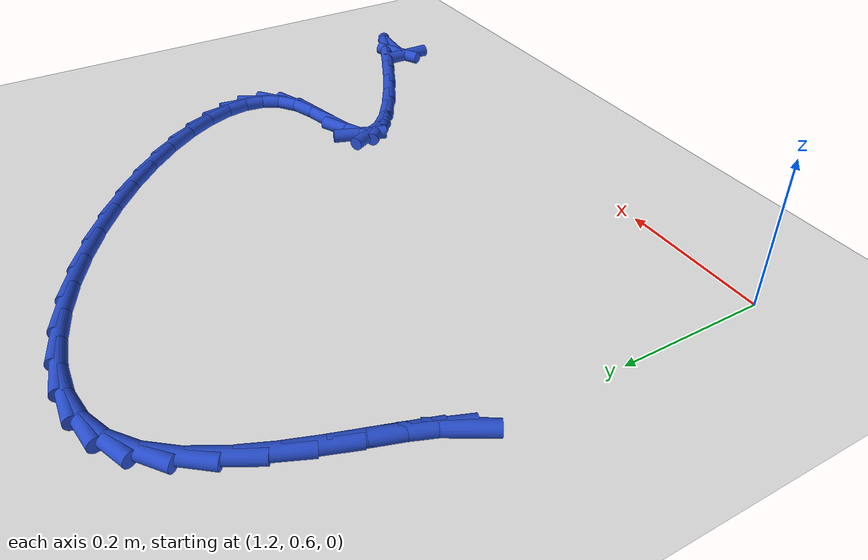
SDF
<sdf version="1.6">
 <world name="default">
  <model name="ground_plane">
   <static>1</static>
   <link name="link">
    <collision name="collision">
     <geometry><plane><normal>0 0 1</normal><size>100 100</size></plane></geometry>
     <surface><friction><ode><mu>100</mu><mu2>50</mu2></ode></friction></surface>
    </collision>
    <visual name="visual">
     <cast_shadows>0</cast_shadows>
     <geometry><plane><normal>0 0 1</normal><size>100 100</size></plane></geometry>
     <material>
      <script><uri>file://media/materials/scripts/gazebo.material</uri><name>Gazebo/WhiteGlow</name></script>
     </material>
    </visual>
   </link>
  </model>
  <model name="line">
   <link name="link_69">
    <pose>1.2093890239799368 1.004017362185283 0.01 0 1.57 1.0451787040862872</pose>
    <collision name="collision">
     <geometry><cylinder><radius>0.01</radius><length>0.08</length></cylinder></geometry>
    </collision>
    <visual name="visual">
     <material>
      <script><name>Gazebo/Blue</name><uri>file://media/materials/scripts/gazebo.material</uri></script>
     </material>
     <geometry><cylinder><radius>0.01</radius><length>0.08</length></cylinder></geometry>
    </visual>
   </link>
   <link name="link_70">
    <pose>1.2207323001947696 1.0235732106189932 0.01 0 1.57 1.2032125602434733</pose>
    <collision name="collision">
     <geometry><cylinder><radius>0.01</radius><length>0.08</length></cylinder></geometry>
    </collision>
    <visual name="visual">
     <material>
      <script><name>Gazebo/Blue</name><uri>file://media/materials/scripts/gazebo.material</uri></script>
     </material>
     <geometry><cylinder><radius>0.01</radius><length>0.08</length></cylinder></geometry>
    </visual>
   </link>
   <link name="link_71">
    <pose>1.2320252920055705 1.052899103684971 0.01 0 1.57 1.2541263254512238</pose>
    <collision name="collision">
     <geometry><cylinder><radius>0.01</radius><length>0.08</length></cylinder></geometry>
    </collision>
    <visual name="visual">
     <material>
      <script><name>Gazebo/Blue</name><uri>file://media/materials/scripts/gazebo.material</uri></script>
     </material>
     <geometry><cylinder><radius>0.01</radius><length>0.08</length></cylinder></geometry>
    </visual>
   </link>
   <link name="link_72">
    <pose>1.2439766152208074 1.089369669907232 0.01 0 1.57 1.2566402610879577</pose>
    <collision name="collision">
     <geometry><cylinder><radius>0.01</radius><length>0.08</length></cylinder></geometry>
    </collision>
    <visual name="visual">
     <material>
      <script><name>Gazebo/Blue</name><uri>file://media/materials/scripts/gazebo.material</uri></script>
     </material>
     <geometry><cylinder><radius>0.01</radius><length>0.08</length></cylinder></geometry>
    </visual>
   </link>
   <link name="link_73">
    <pose>1.2572948856489456 1.130359537809789 0.01 0 1.57 1.2261562511648025</pose>
    <collision name="collision">
     <geometry><cylinder><radius>0.01</radius><length>0.08</length></cylinder></geometry>
    </collision>
    <visual name="visual">
     <material>
      <script><name>Gazebo/Blue</name><uri>file://media/materials/scripts/gazebo.material</uri></script>
     </material>
     <geometry><cylinder><radius>0.01</radius><length>0.08</length></cylinder></geometry>
    </visual>
   </link>
   <link name="link_74">
    <pose>1.2726887190984517 1.1732433359166565 0.01 0 1.57 1.163647638612121</pose>
    <collision name="collision">
     <geometry><cylinder><radius>0.01</radius><length>0.08</length></cylinder></geometry>
    </collision>
    <visual name="visual">
     <material>
      <script><name>Gazebo/Blue</name><uri>file://media/materials/scripts/gazebo.material</uri></script>
     </material>
     <geometry><cylinder><radius>0.01</radius><length>0.08</length></cylinder></geometry>
    </visual>
   </link>
   <link name="link_75">
    <pose>1.2908667313777928 1.2153956927518497 0.01 0 1.57 1.0613819586566187</pose>
    <collision name="collision">
     <geometry><cylinder><radius>0.01</radius><length>0.08</length></cylinder></geometry>
    </collision>
    <visual name="visual">
     <material>
      <script><name>Gazebo/Blue</name><uri>file://media/materials/scripts/gazebo.material</uri></script>
     </material>
     <geometry><cylinder><radius>0.01</radius><length>0.08</length></cylinder></geometry>
    </visual>
   </link>
   <link name="link_76">
    <pose>1.312537538295435 1.2541912368393806 0.01 0 1.57 0.9031280102007078</pose>
    <collision name="collision">
     <geometry><cylinder><radius>0.01</radius><length>0.08</length></cylinder></geometry>
    </collision>
    <visual name="visual">
     <material>
      <script><name>Gazebo/Blue</name><uri>file://media/materials/scripts/gazebo.material</uri></script>
     </material>
     <geometry><cylinder><radius>0.01</radius><length>0.08</length></cylinder></geometry>
    </visual>
   </link>
   <link name="link_77">
    <pose>1.338409755659844 1.287004596703264 0.01 0 1.57 0.6675301401347292</pose>
    <collision name="collision">
     <geometry><cylinder><radius>0.01</radius><length>0.08</length></cylinder></geometry>
    </collision>
    <visual name="visual">
     <material>
      <script><name>Gazebo/Blue</name><uri>file://media/materials/scripts/gazebo.material</uri></script>
     </material>
     <geometry><cylinder><radius>0.01</radius><length>0.08</length></cylinder></geometry>
    </visual>
   </link>
   <link name="link_78">
    <pose>1.3691724779118668 1.311253063617156 0.01 0 1.57 0.38807283387449476</pose>
    <collision name="collision">
     <geometry><cylinder><radius>0.01</radius><length>0.08</length></cylinder></geometry>
    </collision>
    <visual name="visual">
     <material>
      <script><name>Gazebo/Blue</name><uri>file://media/materials/scripts/gazebo.material</uri></script>
     </material>
     <geometry><cylinder><radius>0.01</radius><length>0.08</length></cylinder></geometry>
    </visual>
   </link>
   <link name="link_79">
    <pose>1.4048379091431957 1.3258332311280516 0.01 0 1.57 0.1407743633058329</pose>
    <collision name="collision">
     <geometry><cylinder><radius>0.01</radius><length>0.08</length></cylinder></geometry>
    </collision>
    <visual name="visual">
     <material>
      <script><name>Gazebo/Blue</name><uri>file://media/materials/scripts/gazebo.material</uri></script>
     </material>
     <geometry><cylinder><radius>0.01</radius><length>0.08</length></cylinder></geometry>
    </visual>
   </link>
   <link name="link_80">
    <pose>1.4445836494859587 1.3314656684627213 0.01 0 1.57 -0.057725145718557754</pose>
    <collision name="collision">
     <geometry><cylinder><radius>0.01</radius><length>0.08</length></cylinder></geometry>
    </collision>
    <visual name="visual">
     <material>
      <script><name>Gazebo/Blue</name><uri>file://media/materials/scripts/gazebo.material</uri></script>
     </material>
     <geometry><cylinder><radius>0.01</radius><length>0.08</length></cylinder></geometry>
    </visual>
   </link>
   <link name="link_81">
    <pose>1.4875358005800323 1.3289834916389431 0.01 0 1.57 -0.21235594215992337</pose>
    <collision name="collision">
     <geometry><cylinder><radius>0.01</radius><length>0.08</length></cylinder></geometry>
    </collision>
    <visual name="visual">
     <material>
      <script><name>Gazebo/Blue</name><uri>file://media/materials/scripts/gazebo.material</uri></script>
     </material>
     <geometry><cylinder><radius>0.01</radius><length>0.08</length></cylinder></geometry>
    </visual>
   </link>
   <link name="link_82">
    <pose>1.5328204640652923 1.3192198166744946 0.01 0 1.57 -0.33384962443394295</pose>
    <collision name="collision">
     <geometry><cylinder><radius>0.01</radius><length>0.08</length></cylinder></geometry>
    </collision>
    <visual name="visual">
     <material>
      <script><name>Gazebo/Blue</name><uri>file://media/materials/scripts/gazebo.material</uri></script>
     </material>
     <geometry><cylinder><radius>0.01</radius><length>0.08</length></cylinder></geometry>
    </visual>
   </link>
   <link name="link_83">
    <pose>1.5795637415816153 1.3030077595871523 0.01 0 1.57 -0.4321226647753704</pose>
    <collision name="collision">
     <geometry><cylinder><radius>0.01</radius><length>0.08</length></cylinder></geometry>
    </collision>
    <visual name="visual">
     <material>
      <script><name>Gazebo/Blue</name><uri>file://media/materials/scripts/gazebo.material</uri></script>
     </material>
     <geometry><cylinder><radius>0.01</radius><length>0.08</length></cylinder></geometry>
    </visual>
   </link>
   <link name="link_84">
    <pose>1.626891734768877 1.2811804363946948 0.01 0 1.57 -0.5148108474893913</pose>
    <collision name="collision">
     <geometry><cylinder><radius>0.01</radius><length>0.08</length></cylinder></geometry>
    </collision>
    <visual name="visual">
     <material>
      <script><name>Gazebo/Blue</name><uri>file://media/materials/scripts/gazebo.material</uri></script>
     </material>
     <geometry><cylinder><radius>0.01</radius><length>0.08</length></cylinder></geometry>
    </visual>
   </link>
   <link name="link_85">
    <pose>1.6739305452669537 1.2545709631148987 0.01 0 1.57 -0.5876205202233303</pose>
    <collision name="collision">
     <geometry><cylinder><radius>0.01</radius><length>0.08</length></cylinder></geometry>
    </collision>
    <visual name="visual">
     <material>
      <script><name>Gazebo/Blue</name><uri>file://media/materials/scripts/gazebo.material</uri></script>
     </material>
     <geometry><cylinder><radius>0.01</radius><length>0.08</length></cylinder></geometry>
    </visual>
   </link>
   <link name="link_86">
    <pose>1.7198062747157228 1.2240124557655419 0.01 0 1.57 -0.655011821635105</pose>
    <collision name="collision">
     <geometry><cylinder><radius>0.01</radius><length>0.08</length></cylinder></geometry>
    </collision>
    <visual name="visual">
     <material>
      <script><name>Gazebo/Blue</name><uri>file://media/materials/scripts/gazebo.material</uri></script>
     </material>
     <geometry><cylinder><radius>0.01</radius><length>0.08</length></cylinder></geometry>
    </visual>
   </link>
   <link name="link_87">
    <pose>1.7636450247550584 1.1903380303644018 0.01 0 1.57 -0.7208377093579623</pose>
    <collision name="collision">
     <geometry><cylinder><radius>0.01</radius><length>0.08</length></cylinder></geometry>
    </collision>
    <visual name="visual">
     <material>
      <script><name>Gazebo/Blue</name><uri>file://media/materials/scripts/gazebo.material</uri></script>
     </material>
     <geometry><cylinder><radius>0.01</radius><length>0.08</length></cylinder></geometry>
    </visual>
   </link>
   <link name="link_88">
    <pose>1.8045728970248385 1.1543808029292564 0.01 0 1.57 -0.7889369451019659</pose>
    <collision name="collision">
     <geometry><cylinder><radius>0.01</radius><length>0.08</length></cylinder></geometry>
    </collision>
    <visual name="visual">
     <material>
      <script><name>Gazebo/Blue</name><uri>file://media/materials/scripts/gazebo.material</uri></script>
     </material>
     <geometry><cylinder><radius>0.01</radius><length>0.08</length></cylinder></geometry>
    </visual>
   </link>
   <link name="link_89">
    <pose>1.8417159931649383 1.1169738894778825 0.01 0 1.57 -0.8637965907653872</pose>
    <collision name="collision">
     <geometry><cylinder><radius>0.01</radius><length>0.08</length></cylinder></geometry>
    </collision>
    <visual name="visual">
     <material>
      <script><name>Gazebo/Blue</name><uri>file://media/materials/scripts/gazebo.material</uri></script>
     </material>
     <geometry><cylinder><radius>0.01</radius><length>0.08</length></cylinder></geometry>
    </visual>
   </link>
   <link name="link_90">
    <pose>1.8742004148152343 1.078950406028058 0.01 0 1.57 -0.9514775823673693</pose>
    <collision name="collision">
     <geometry><cylinder><radius>0.01</radius><length>0.08</length></cylinder></geometry>
    </collision>
    <visual name="visual">
     <material>
      <script><name>Gazebo/Blue</name><uri>file://media/materials/scripts/gazebo.material</uri></script>
     </material>
     <geometry><cylinder><radius>0.01</radius><length>0.08</length></cylinder></geometry>
    </visual>
   </link>
   <link name="link_91">
    <pose>1.9011522636156029 1.0411434685975594 0.01 0 1.57 -1.0611097965772844</pose>
    <collision name="collision">
     <geometry><cylinder><radius>0.01</radius><length>0.08</length></cylinder></geometry>
    </collision>
    <visual name="visual">
     <material>
      <script><name>Gazebo/Blue</name><uri>file://media/materials/scripts/gazebo.material</uri></script>
     </material>
     <geometry><cylinder><radius>0.01</radius><length>0.08</length></cylinder></geometry>
    </visual>
   </link>
   <link name="link_92">
    <pose>1.9216976412059201 1.0043861932041658 0.01 0 1.57 -1.2073311665962785</pose>
    <collision name="collision">
     <geometry><cylinder><radius>0.01</radius><length>0.08</length></cylinder></geometry>
    </collision>
    <visual name="visual">
     <material>
      <script><name>Gazebo/Blue</name><uri>file://media/materials/scripts/gazebo.material</uri></script>
     </material>
     <geometry><cylinder><radius>0.01</radius><length>0.08</length></cylinder></geometry>
    </visual>
   </link>
   <link name="link_93">
    <pose>1.9349626492260623 0.9695116958656537 0.01 0 1.57 -1.4131914067386084</pose>
    <collision name="collision">
     <geometry><cylinder><radius>0.01</radius><length>0.08</length></cylinder></geometry>
    </collision>
    <visual name="visual">
     <material>
      <script><name>Gazebo/Blue</name><uri>file://media/materials/scripts/gazebo.material</uri></script>
     </material>
     <geometry><cylinder><radius>0.01</radius><length>0.08</length></cylinder></geometry>
    </visual>
   </link>
   <link name="link_94">
    <pose>1.9400733893159048 0.9373530925998002 0.01 0 1.57 1.434715560514292</pose>
    <collision name="collision">
     <geometry><cylinder><radius>0.01</radius><length>0.08</length></cylinder></geometry>
    </collision>
    <visual name="visual">
     <material>
      <script><name>Gazebo/Blue</name><uri>file://media/materials/scripts/gazebo.material</uri></script>
     </material>
     <geometry><cylinder><radius>0.01</radius><length>0.08</length></cylinder></geometry>
    </visual>
   </link>
   <link name="link_95">
    <pose>1.9361559631153256 0.9087434994243841 0.01 0 1.57 1.052421467482018</pose>
    <collision name="collision">
     <geometry><cylinder><radius>0.01</radius><length>0.08</length></cylinder></geometry>
    </collision>
    <visual name="visual">
     <material>
      <script><name>Gazebo/Blue</name><uri>file://media/materials/scripts/gazebo.material</uri></script>
     </material>
     <geometry><cylinder><radius>0.01</radius><length>0.08</length></cylinder></geometry>
    </visual>
   </link>
   <link name="link_96">
    <pose>1.922336472264199 0.8845160323571819 0.01 0 1.57 0.6580577961268907</pose>
    <collision name="collision">
     <geometry><cylinder><radius>0.01</radius><length>0.08</length></cylinder></geometry>
    </collision>
    <visual name="visual">
     <material>
      <script><name>Gazebo/Blue</name><uri>file://media/materials/scripts/gazebo.material</uri></script>
     </material>
     <geometry><cylinder><radius>0.01</radius><length>0.08</length></cylinder></geometry>
    </visual>
   </link>
   <link name="link_97">
    <pose>1.8977410184024022 0.8655038074159713 0.01 0 1.57 0.36701512394243535</pose>
    <collision name="collision">
     <geometry><cylinder><radius>0.01</radius><length>0.08</length></cylinder></geometry>
    </collision>
    <visual name="visual">
     <material>
      <script><name>Gazebo/Blue</name><uri>file://media/materials/scripts/gazebo.material</uri></script>
     </material>
     <geometry><cylinder><radius>0.01</radius><length>0.08</length></cylinder></geometry>
    </visual>
   </link>
   <link name="link_98">
    <pose>1.8627093559810215 0.8520364730474256 0.01 0 1.57 0.2512129176133822</pose>
    <collision name="collision">
     <geometry><cylinder><radius>0.01</radius><length>0.08</length></cylinder></geometry>
    </collision>
    <visual name="visual">
     <material>
      <script><name>Gazebo/Blue</name><uri>file://media/materials/scripts/gazebo.material</uri></script>
     </material>
     <geometry><cylinder><radius>0.01</radius><length>0.08</length></cylinder></geometry>
    </visual>
   </link>
   <link name="link_99">
    <pose>1.8235213751343065 0.841979492177605 0.01 0 1.57 0.2641455238736409</pose>
    <collision name="collision">
     <geometry><cylinder><radius>0.01</radius><length>0.08</length></cylinder></geometry>
    </collision>
    <visual name="visual">
     <material>
      <script><name>Gazebo/Blue</name><uri>file://media/materials/scripts/gazebo.material</uri></script>
     </material>
     <geometry><cylinder><radius>0.01</radius><length>0.08</length></cylinder></geometry>
    </visual>
   </link>
   <link name="link_100">
    <pose>1.7882714571787521 0.8324456104316459 0.01 0 1.57 0.473385348417192</pose>
    <collision name="collision">
     <geometry><cylinder><radius>0.01</radius><length>0.08</length></cylinder></geometry>
    </collision>
    <visual name="visual">
     <material>
      <script><name>Gazebo/Blue</name><uri>file://media/materials/scripts/gazebo.material</uri></script>
     </material>
     <geometry><cylinder><radius>0.01</radius><length>0.08</length></cylinder></geometry>
    </visual>
   </link>
   <link name="link_101">
    <pose>1.7650478045822904 0.8205497096863023 0.01 0 1.57 1.2261187645979847</pose>
    <collision name="collision">
     <geometry><cylinder><radius>0.01</radius><length>0.08</length></cylinder></geometry>
    </collision>
    <visual name="visual">
     <material>
      <script><name>Gazebo/Blue</name><uri>file://media/materials/scripts/gazebo.material</uri></script>
     </material>
     <geometry><cylinder><radius>0.01</radius><length>0.08</length></cylinder></geometry>
    </visual>
   </link>
   <link name="link_102">
    <pose>1.7592336270884847 0.8043546128128746 0.01 0 1.57 -1.1026465772301572</pose>
    <collision name="collision">
     <geometry><cylinder><radius>0.01</radius><length>0.08</length></cylinder></geometry>
    </collision>
    <visual name="visual">
     <material>
      <script><name>Gazebo/Blue</name><uri>file://media/materials/scripts/gazebo.material</uri></script>
     </material>
     <geometry><cylinder><radius>0.01</radius><length>0.08</length></cylinder></geometry>
    </visual>
   </link>
   <link name="link_103">
    <pose>1.7693620727631074 0.7843236867658487 0.01 0 1.57 -0.7745073679188242</pose>
    <collision name="collision">
     <geometry><cylinder><radius>0.01</radius><length>0.08</length></cylinder></geometry>
    </collision>
    <visual name="visual">
     <material>
      <script><name>Gazebo/Blue</name><uri>file://media/materials/scripts/gazebo.material</uri></script>
     </material>
     <geometry><cylinder><radius>0.01</radius><length>0.08</length></cylinder></geometry>
    </visual>
   </link>
   <link name="link_104">
    <pose>1.7928983742531124 0.7612945400993594 0.01 0 1.57 -0.6319206895175138</pose>
    <collision name="collision">
     <geometry><cylinder><radius>0.01</radius><length>0.08</length></cylinder></geometry>
    </collision>
    <visual name="visual">
     <material>
      <script><name>Gazebo/Blue</name><uri>file://media/materials/scripts/gazebo.material</uri></script>
     </material>
     <geometry><cylinder><radius>0.01</radius><length>0.08</length></cylinder></geometry>
    </visual>
   </link>
   <link name="link_105">
    <pose>1.8273077642054516 0.7361047813675409 0.01 0 1.57 -0.5551508559688741</pose>
    <collision name="collision">
     <geometry><cylinder><radius>0.01</radius><length>0.08</length></cylinder></geometry>
    </collision>
    <visual name="visual">
     <material>
      <script><name>Gazebo/Blue</name><uri>file://media/materials/scripts/gazebo.material</uri></script>
     </material>
     <geometry><cylinder><radius>0.01</radius><length>0.08</length></cylinder></geometry>
    </visual>
   </link>
   <link name="link_106">
    <pose>1.8700554752670793 0.7095920191245282 0.01 0 1.57 -0.5074955493054276</pose>
    <collision name="collision">
     <geometry><cylinder><radius>0.01</radius><length>0.08</length></cylinder></geometry>
    </collision>
    <visual name="visual">
     <material>
      <script><name>Gazebo/Blue</name><uri>file://media/materials/scripts/gazebo.material</uri></script>
     </material>
     <geometry><cylinder><radius>0.01</radius><length>0.08</length></cylinder></geometry>
    </visual>
   </link>
   <link name="link_107">
    <pose>1.9186067400849487 0.6825938619244553 0.01 0 1.57 -0.47494408642015445</pose>
    <collision name="collision">
     <geometry><cylinder><radius>0.01</radius><length>0.08</length></cylinder></geometry>
    </collision>
    <visual name="visual">
     <material>
      <script><name>Gazebo/Blue</name><uri>file://media/materials/scripts/gazebo.material</uri></script>
     </material>
     <geometry><cylinder><radius>0.01</radius><length>0.08</length></cylinder></geometry>
    </visual>
   </link>
   <link name="link_108">
    <pose>1.9704267913060123 0.6559479183214577 0.01 0 1.57 -0.451073411348029</pose>
    <collision name="collision">
     <geometry><cylinder><radius>0.01</radius><length>0.08</length></cylinder></geometry>
    </collision>
    <visual name="visual">
     <material>
      <script><name>Gazebo/Blue</name><uri>file://media/materials/scripts/gazebo.material</uri></script>
     </material>
     <geometry><cylinder><radius>0.01</radius><length>0.08</length></cylinder></geometry>
    </visual>
   </link>
   <link name="link_109">
    <pose>2.022980861577224 0.6304917968696698 0.01 0 1.57 -0.43247405517039805</pose>
    <collision name="collision">
     <geometry><cylinder><radius>0.01</radius><length>0.08</length></cylinder></geometry>
    </collision>
    <visual name="visual">
     <material>
      <script><name>Gazebo/Blue</name><uri>file://media/materials/scripts/gazebo.material</uri></script>
     </material>
     <geometry><cylinder><radius>0.01</radius><length>0.08</length></cylinder></geometry>
    </visual>
   </link>
   <link name="link_121">
    <pose>2.0137199765127916 0.6213476336288617 0.01 0 1.57 -0.07944639619330662</pose>
    <collision name="collision">
     <geometry><cylinder><radius>0.01</radius><length>0.08</length></cylinder></geometry>
    </collision>
    <visual name="visual">
     <material>
      <script><name>Gazebo/Blue</name><uri>file://media/materials/scripts/gazebo.material</uri></script>
     </material>
     <geometry><cylinder><radius>0.01</radius><length>0.08</length></cylinder></geometry>
    </visual>
   </link>
   <link name="link_122">
    <pose>1.9879259521545014 0.6234011982415727 0.01 0 1.57 0.4841135932248744</pose>
    <collision name="collision">
     <geometry><cylinder><radius>0.01</radius><length>0.08</length></cylinder></geometry>
    </collision>
    <visual name="visual">
     <material>
      <script><name>Gazebo/Blue</name><uri>file://media/materials/scripts/gazebo.material</uri></script>
     </material>
     <geometry><cylinder><radius>0.01</radius><length>0.08</length></cylinder></geometry>
    </visual>
   </link>
   <link name="link_123">
    <pose>1.9755260250825617 0.6168806889178127 0.01 0 1.57 1.5525701379906638</pose>
    <collision name="collision">
     <geometry><cylinder><radius>0.01</radius><length>0.08</length></cylinder></geometry>
    </collision>
    <visual name="visual">
     <material>
      <script><name>Gazebo/Blue</name><uri>file://media/materials/scripts/gazebo.material</uri></script>
     </material>
     <geometry><cylinder><radius>0.01</radius><length>0.08</length></cylinder></geometry>
    </visual>
   </link>
  </model>
 </world>
</sdf>
